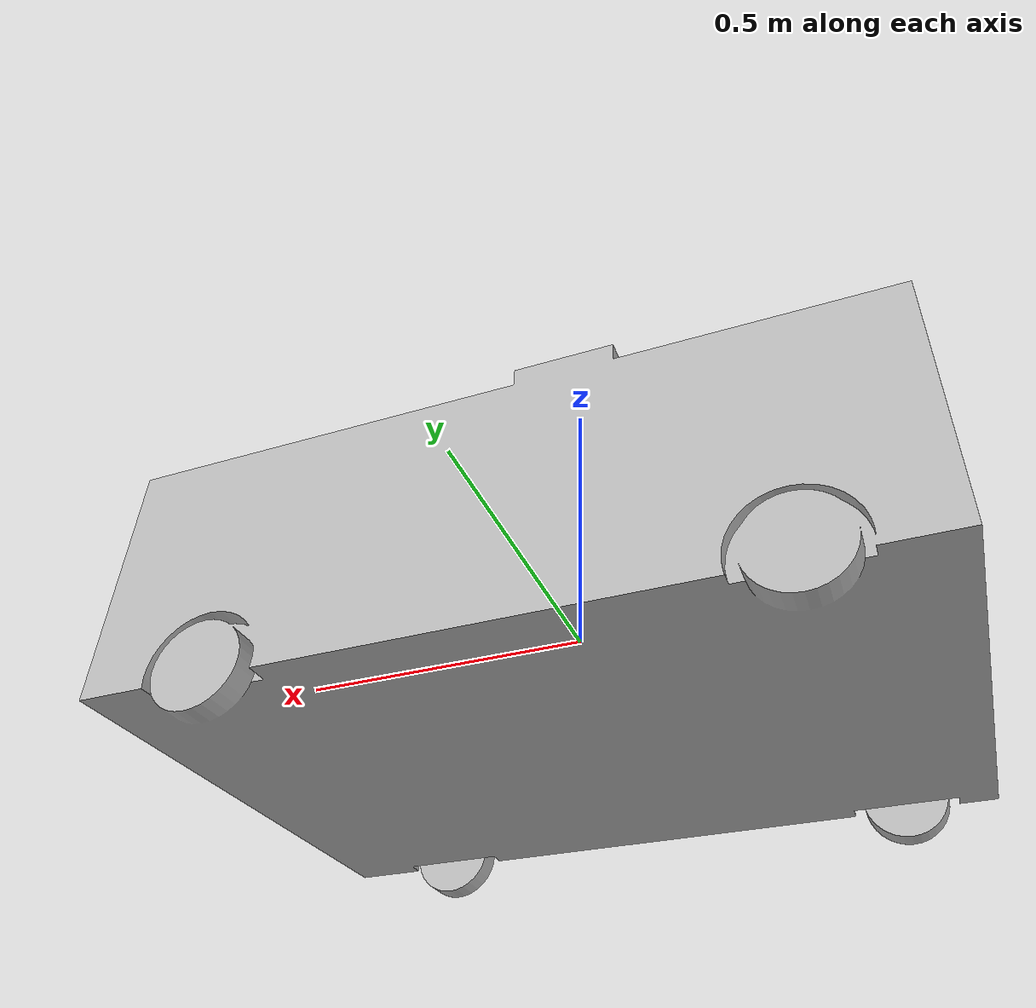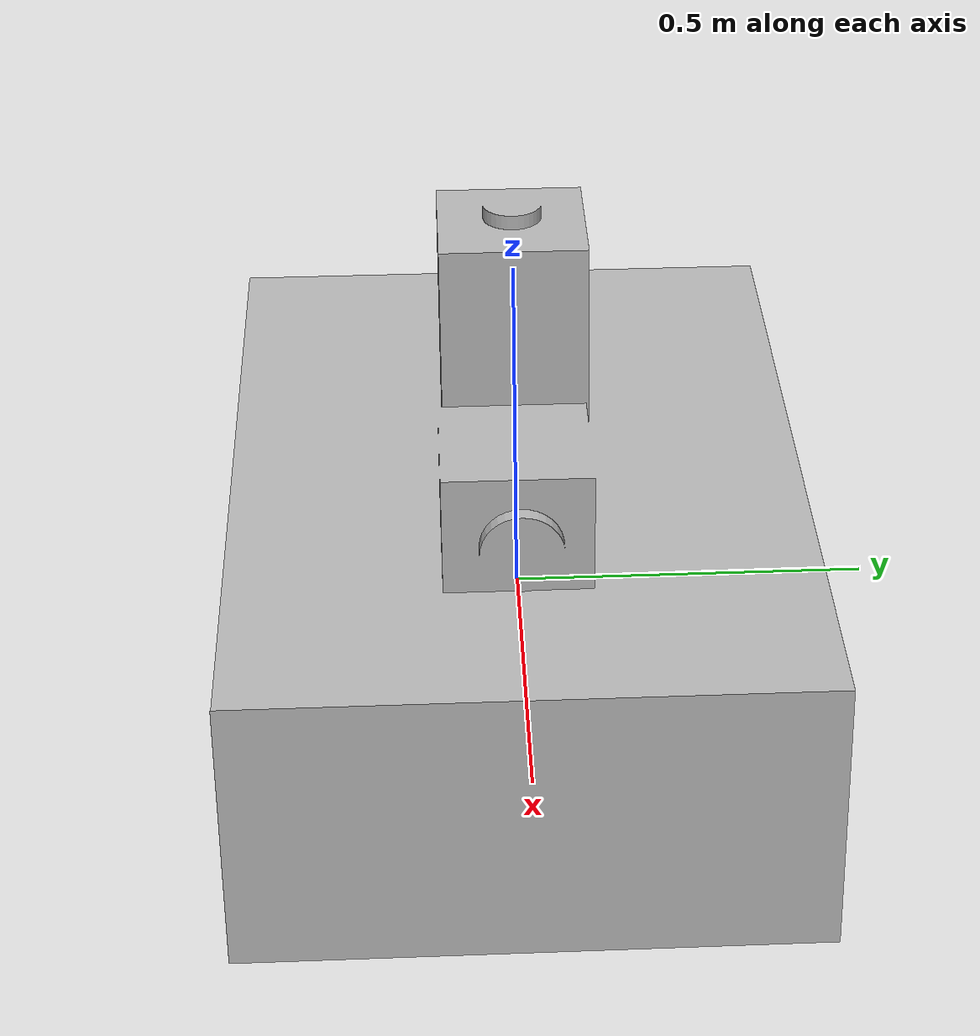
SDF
<sdf version='1.11'>
  <model name='veiculo_terrestre'>
    <link name='base_link'>
      <inertial>
        <pose>0 0 0 0 0 0</pose>
        <mass>1</mass>
        <inertia>
          <ixx>1</ixx>
          <ixy>0</ixy>
          <ixz>0</ixz>
          <iyy>1</iyy>
          <iyz>0</iyz>
          <izz>1</izz>
        </inertia>
      </inertial>
      <collision name='base_link_collision'>
        <pose>0 0 0 0 0 0</pose>
        <geometry>
          <mesh>
            <scale>1 1 1</scale>
            <uri>file:///home/ruben/Documents/Projeto Final/veiculo_terrestre/meshes/robo.dae</uri>
	</mesh>
        </geometry>
      </collision>
      <visual name='base_link_visual'>
        <pose>0 0 0 0 0 0</pose>
        <geometry>
          <mesh>
            <scale>1 1 1</scale>
            <uri>file:///home/ruben/Documents/Projeto Final/veiculo_terrestre/meshes/robo.dae</uri>
	  </mesh>
        </geometry>
      </visual>
    </link>
  </model>
</sdf>
